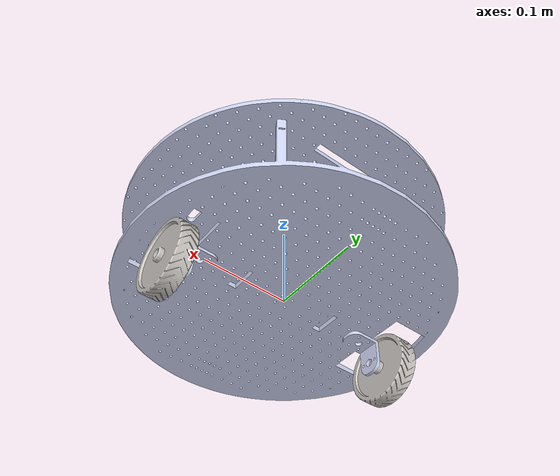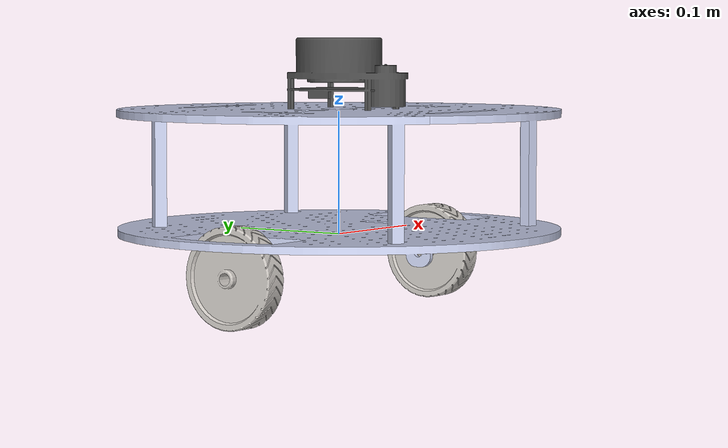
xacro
<?xml version="1.0" encoding="utf-8"?>
<robot
  name="diffRobot">
  <link
    name="base_link">
    <inertial>
      <origin
        xyz="0.000103872023518377 3.58628358236025E-05 0.0515454710632992"
        rpy="0 0 0" />
      <mass
        value="1.14004067009862" />
      <inertia
        ixx="0.00941706968445277"
        ixy="1.12232392243467E-06"
        ixz="-4.93915969703524E-21"
        iyy="0.0084577122951622"
        iyz="5.95773147775248E-19"
        izz="0.0178232711919201" />
    </inertial>
    <visual>
      <origin
        xyz="0 0 0"
        rpy="0 0 0" />
      <geometry>
        <mesh
          filename="package://diffRobot/meshes/base_link.STL" />
      </geometry>
      <material
        name="">
        <color
          rgba="0.792156862745098 0.819607843137255 0.933333333333333 1" />
      </material>
    </visual>
    <collision>
      <origin
        xyz="0 0 0"
        rpy="0 0 0" />
      <geometry>
        <mesh
          filename="package://diffRobot/meshes/base_link.STL" />
      </geometry>
    </collision>
  </link>
  <link
    name="Rwheel">
    <inertial>
      <origin
        xyz="-2.65412691824451E-16 1.15393805621977E-14 0.0125000000000003"
        rpy="0 0 0" />
      <mass
        value="0.618834179086721" />
      <inertia
        ixx="0.000274104490862329"
        ixy="8.71563021406785E-17"
        ixz="-6.19148140798845E-19"
        iyy="0.000274104490862329"
        iyz="5.78124763710376E-17"
        izz="0.000518442401620523" />
    </inertial>
    <visual>
      <origin
        xyz="0 0 0"
        rpy="0 0 0" />
      <geometry>
        <mesh
          filename="package://diffRobot/meshes/Rwheel.STL" />
      </geometry>
      <material
        name="">
        <color
          rgba="0.776470588235294 0.756862745098039 0.737254901960784 1" />
      </material>
    </visual>
    <collision>
      <origin
        xyz="0 0 0"
        rpy="0 0 0" />
      <geometry>
        <mesh
          filename="package://diffRobot/meshes/Rwheel.STL" />
      </geometry>
    </collision>
  </link>
  <joint
    name="Rjoint"
    type="continuous">
    <origin
      xyz="-0.1275 0 -0.0239999999999999"
      rpy="1.5707963267949 0.287929555395445 -1.5707963267949" />
    <parent
      link="base_link" />
    <child
      link="Rwheel" />
    <axis
      xyz="0 0 1" />
  </joint>
  <link
    name="Lwheel">
    <inertial>
      <origin
        xyz="-9.64506252643105E-16 -1.06754882711613E-14 -0.0125000000000001"
        rpy="0 0 0" />
      <mass
        value="0.61883417908672" />
      <inertia
        ixx="0.000274104490862329"
        ixy="-8.71495258771005E-17"
        ixz="7.0203286930098E-19"
        iyy="0.000274104490862329"
        iyz="5.80282536581578E-17"
        izz="0.000518442401620523" />
    </inertial>
    <visual>
      <origin
        xyz="0 0 0"
        rpy="0 0 0" />
      <geometry>
        <mesh
          filename="package://diffRobot/meshes/Lwheel.STL" />
      </geometry>
      <material
        name="">
        <color
          rgba="0.776470588235294 0.756862745098039 0.737254901960784 1" />
      </material>
    </visual>
    <collision>
      <origin
        xyz="0 0 0"
        rpy="0 0 0" />
      <geometry>
        <mesh
          filename="package://diffRobot/meshes/Lwheel.STL" />
      </geometry>
    </collision>
  </link>
  <joint
    name="Ljoint"
    type="continuous">
    <origin
      xyz="0.127499999999999 0 -0.024"
      rpy="1.5707963267949 0.434085925858152 -1.57079632679489" />
    <parent
      link="base_link" />
    <child
      link="Lwheel" />
    <axis
      xyz="0 0 1" />
  </joint>
  <link
    name="lidar">
    <inertial>
      <origin
        xyz="-9.17768374699226E-05 -0.00676832715317712 -0.0219378521073858"
        rpy="0 0 0" />
      <mass
        value="1.33041048124832" />
      <inertia
        ixx="0.000960497023041248"
        ixy="8.00271259590308E-07"
        ixz="-3.0960362664798E-06"
        iyy="0.000614736954229147"
        iyz="-0.000158189979278382"
        izz="0.00109812375363565" />
    </inertial>
    <visual>
      <origin
        xyz="0 0 0"
        rpy="0 0 0" />
      <geometry>
        <mesh
          filename="package://diffRobot/meshes/lidar.STL" />
      </geometry>
      <material
        name="">
        <color
          rgba="0.298039215686275 0.298039215686275 0.298039215686275 1" />
      </material>
    </visual>
    <collision>
      <origin
        xyz="0 0 0"
        rpy="0 0 0" />
      <geometry>
        <mesh
          filename="package://diffRobot/meshes/lidar.STL" />
      </geometry>
    </collision>
  </link>
  <joint
    name="lidarJoint"
    type="fixed">
    <origin
      xyz="0 0 0.1592"
      rpy="0 0 0" />
    <parent
      link="base_link" />
    <child
      link="lidar" />
    <axis
      xyz="0 0 0" />
  </joint>
</robot>
